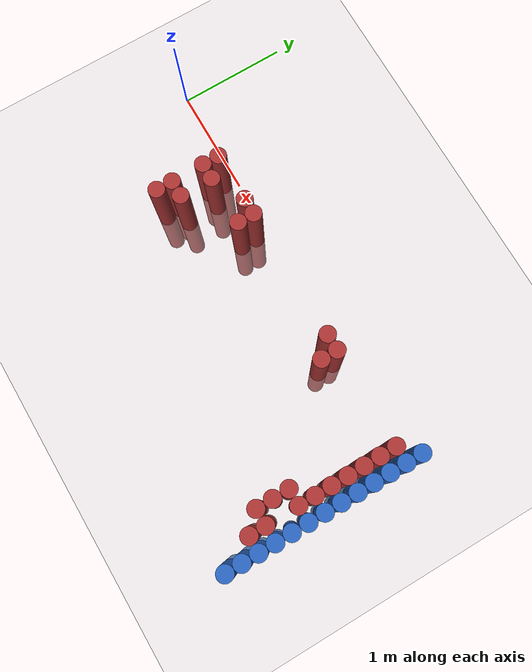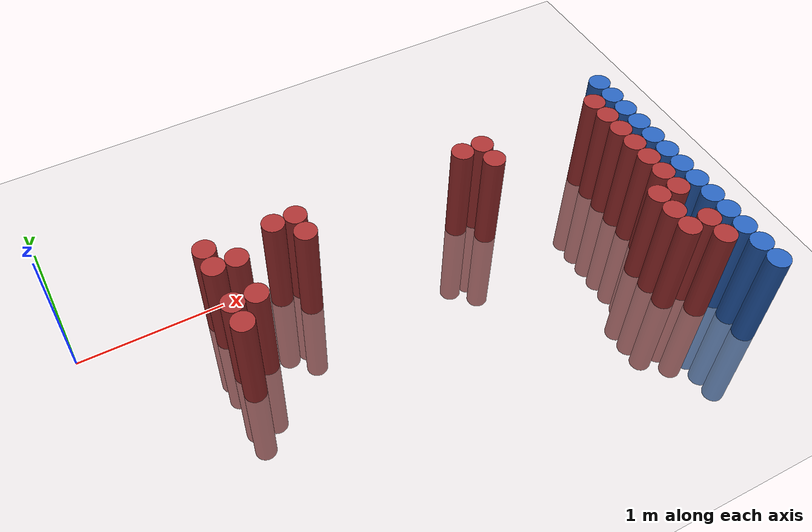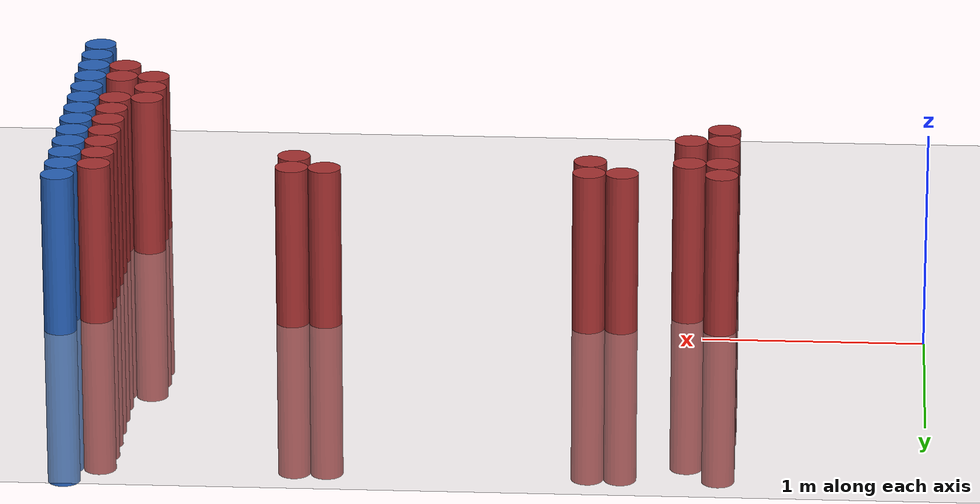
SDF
<sdf version="1.6">
 <world name="default">
  <model name="ground_plane">
   <static>1</static>
   <link name="link">
    <collision name="collision">
     <geometry><plane><normal>0 0 1</normal><size>100 100</size></plane></geometry>
     <surface><friction><ode><mu>100</mu><mu2>50</mu2></ode></friction></surface>
    </collision>
    <visual name="visual">
     <cast_shadows>0</cast_shadows>
     <geometry><plane><normal>0 0 1</normal><size>100 100</size></plane></geometry>
     <material>
      <script><uri>file://media/materials/scripts/gazebo.material</uri><name>Gazebo/Grey</name></script>
     </material>
    </visual>
   </link>
  </model>
  <model name="unit_cylinder_90">
   <static>1</static>
   <pose>3.925000 -1.775000 0.000000 0.000000 0.000000 0.000000</pose>
   <link name="link">
    <inertial>
     <mass>1</mass>
     <inertia><ixx>0.145833</ixx><ixy>0</ixy><ixz>0</ixz><iyy>0.145833</iyy><iyz>0</iyz><izz>0.125</izz></inertia>
    </inertial>
    <collision name="collision">
     <geometry><cylinder><radius>0.075000</radius><length>1.5</length></cylinder></geometry>
    </collision>
    <visual name="visual">
     <geometry><cylinder><radius>0.075000</radius><length>1.5</length></cylinder></geometry>
     <material>
      <ambient>0.152000 0.379000 0.720000 1</ambient>
      <diffuse>0.152000 0.379000 0.720000 1</diffuse>
     </material>
     <material>
      <script><name>Gazebo/Grey</name><uri>file://media/materials/scripts/gazebo.material</uri></script>
     </material>
    </visual>
   </link>
  </model>
  <model name="unit_cylinder_92">
   <static>1</static>
   <pose>3.925000 -1.625000 0.000000 0.000000 0.000000 0.000000</pose>
   <link name="link">
    <inertial>
     <mass>1</mass>
     <inertia><ixx>0.145833</ixx><ixy>0</ixy><ixz>0</ixz><iyy>0.145833</iyy><iyz>0</iyz><izz>0.125</izz></inertia>
    </inertial>
    <collision name="collision">
     <geometry><cylinder><radius>0.075000</radius><length>1.5</length></cylinder></geometry>
    </collision>
    <visual name="visual">
     <geometry><cylinder><radius>0.075000</radius><length>1.5</length></cylinder></geometry>
     <material>
      <ambient>0.152000 0.379000 0.720000 1</ambient>
      <diffuse>0.152000 0.379000 0.720000 1</diffuse>
     </material>
     <material>
      <script><name>Gazebo/Grey</name><uri>file://media/materials/scripts/gazebo.material</uri></script>
     </material>
    </visual>
   </link>
  </model>
  <model name="unit_cylinder_94">
   <static>1</static>
   <pose>3.925000 -1.475000 0.000000 0.000000 0.000000 0.000000</pose>
   <link name="link">
    <inertial>
     <mass>1</mass>
     <inertia><ixx>0.145833</ixx><ixy>0</ixy><ixz>0</ixz><iyy>0.145833</iyy><iyz>0</iyz><izz>0.125</izz></inertia>
    </inertial>
    <collision name="collision">
     <geometry><cylinder><radius>0.075000</radius><length>1.5</length></cylinder></geometry>
    </collision>
    <visual name="visual">
     <geometry><cylinder><radius>0.075000</radius><length>1.5</length></cylinder></geometry>
     <material>
      <ambient>0.152000 0.379000 0.720000 1</ambient>
      <diffuse>0.152000 0.379000 0.720000 1</diffuse>
     </material>
     <material>
      <script><name>Gazebo/Grey</name><uri>file://media/materials/scripts/gazebo.material</uri></script>
     </material>
    </visual>
   </link>
  </model>
  <model name="unit_cylinder_96">
   <static>1</static>
   <pose>3.925000 -1.325000 0.000000 0.000000 0.000000 0.000000</pose>
   <link name="link">
    <inertial>
     <mass>1</mass>
     <inertia><ixx>0.145833</ixx><ixy>0</ixy><ixz>0</ixz><iyy>0.145833</iyy><iyz>0</iyz><izz>0.125</izz></inertia>
    </inertial>
    <collision name="collision">
     <geometry><cylinder><radius>0.075000</radius><length>1.5</length></cylinder></geometry>
    </collision>
    <visual name="visual">
     <geometry><cylinder><radius>0.075000</radius><length>1.5</length></cylinder></geometry>
     <material>
      <ambient>0.152000 0.379000 0.720000 1</ambient>
      <diffuse>0.152000 0.379000 0.720000 1</diffuse>
     </material>
     <material>
      <script><name>Gazebo/Grey</name><uri>file://media/materials/scripts/gazebo.material</uri></script>
     </material>
    </visual>
   </link>
  </model>
  <model name="unit_cylinder_98">
   <static>1</static>
   <pose>3.925000 -1.175000 0.000000 0.000000 0.000000 0.000000</pose>
   <link name="link">
    <inertial>
     <mass>1</mass>
     <inertia><ixx>0.145833</ixx><ixy>0</ixy><ixz>0</ixz><iyy>0.145833</iyy><iyz>0</iyz><izz>0.125</izz></inertia>
    </inertial>
    <collision name="collision">
     <geometry><cylinder><radius>0.075000</radius><length>1.5</length></cylinder></geometry>
    </collision>
    <visual name="visual">
     <geometry><cylinder><radius>0.075000</radius><length>1.5</length></cylinder></geometry>
     <material>
      <ambient>0.152000 0.379000 0.720000 1</ambient>
      <diffuse>0.152000 0.379000 0.720000 1</diffuse>
     </material>
     <material>
      <script><name>Gazebo/Grey</name><uri>file://media/materials/scripts/gazebo.material</uri></script>
     </material>
    </visual>
   </link>
  </model>
  <model name="unit_cylinder_100">
   <static>1</static>
   <pose>3.925000 -1.025000 0.000000 0.000000 0.000000 0.000000</pose>
   <link name="link">
    <inertial>
     <mass>1</mass>
     <inertia><ixx>0.145833</ixx><ixy>0</ixy><ixz>0</ixz><iyy>0.145833</iyy><iyz>0</iyz><izz>0.125</izz></inertia>
    </inertial>
    <collision name="collision">
     <geometry><cylinder><radius>0.075000</radius><length>1.5</length></cylinder></geometry>
    </collision>
    <visual name="visual">
     <geometry><cylinder><radius>0.075000</radius><length>1.5</length></cylinder></geometry>
     <material>
      <ambient>0.152000 0.379000 0.720000 1</ambient>
      <diffuse>0.152000 0.379000 0.720000 1</diffuse>
     </material>
     <material>
      <script><name>Gazebo/Grey</name><uri>file://media/materials/scripts/gazebo.material</uri></script>
     </material>
    </visual>
   </link>
  </model>
  <model name="unit_cylinder_102">
   <static>1</static>
   <pose>3.925000 -0.875000 0.000000 0.000000 0.000000 0.000000</pose>
   <link name="link">
    <inertial>
     <mass>1</mass>
     <inertia><ixx>0.145833</ixx><ixy>0</ixy><ixz>0</ixz><iyy>0.145833</iyy><iyz>0</iyz><izz>0.125</izz></inertia>
    </inertial>
    <collision name="collision">
     <geometry><cylinder><radius>0.075000</radius><length>1.5</length></cylinder></geometry>
    </collision>
    <visual name="visual">
     <geometry><cylinder><radius>0.075000</radius><length>1.5</length></cylinder></geometry>
     <material>
      <ambient>0.152000 0.379000 0.720000 1</ambient>
      <diffuse>0.152000 0.379000 0.720000 1</diffuse>
     </material>
     <material>
      <script><name>Gazebo/Grey</name><uri>file://media/materials/scripts/gazebo.material</uri></script>
     </material>
    </visual>
   </link>
  </model>
  <model name="unit_cylinder_104">
   <static>1</static>
   <pose>3.925000 -0.725000 0.000000 0.000000 0.000000 0.000000</pose>
   <link name="link">
    <inertial>
     <mass>1</mass>
     <inertia><ixx>0.145833</ixx><ixy>0</ixy><ixz>0</ixz><iyy>0.145833</iyy><iyz>0</iyz><izz>0.125</izz></inertia>
    </inertial>
    <collision name="collision">
     <geometry><cylinder><radius>0.075000</radius><length>1.5</length></cylinder></geometry>
    </collision>
    <visual name="visual">
     <geometry><cylinder><radius>0.075000</radius><length>1.5</length></cylinder></geometry>
     <material>
      <ambient>0.152000 0.379000 0.720000 1</ambient>
      <diffuse>0.152000 0.379000 0.720000 1</diffuse>
     </material>
     <material>
      <script><name>Gazebo/Grey</name><uri>file://media/materials/scripts/gazebo.material</uri></script>
     </material>
    </visual>
   </link>
  </model>
  <model name="unit_cylinder_106">
   <static>1</static>
   <pose>3.925000 -0.575000 0.000000 0.000000 0.000000 0.000000</pose>
   <link name="link">
    <inertial>
     <mass>1</mass>
     <inertia><ixx>0.145833</ixx><ixy>0</ixy><ixz>0</ixz><iyy>0.145833</iyy><iyz>0</iyz><izz>0.125</izz></inertia>
    </inertial>
    <collision name="collision">
     <geometry><cylinder><radius>0.075000</radius><length>1.5</length></cylinder></geometry>
    </collision>
    <visual name="visual">
     <geometry><cylinder><radius>0.075000</radius><length>1.5</length></cylinder></geometry>
     <material>
      <ambient>0.152000 0.379000 0.720000 1</ambient>
      <diffuse>0.152000 0.379000 0.720000 1</diffuse>
     </material>
     <material>
      <script><name>Gazebo/Grey</name><uri>file://media/materials/scripts/gazebo.material</uri></script>
     </material>
    </visual>
   </link>
  </model>
  <model name="unit_cylinder_108">
   <static>1</static>
   <pose>3.925000 -0.425000 0.000000 0.000000 0.000000 0.000000</pose>
   <link name="link">
    <inertial>
     <mass>1</mass>
     <inertia><ixx>0.145833</ixx><ixy>0</ixy><ixz>0</ixz><iyy>0.145833</iyy><iyz>0</iyz><izz>0.125</izz></inertia>
    </inertial>
    <collision name="collision">
     <geometry><cylinder><radius>0.075000</radius><length>1.5</length></cylinder></geometry>
    </collision>
    <visual name="visual">
     <geometry><cylinder><radius>0.075000</radius><length>1.5</length></cylinder></geometry>
     <material>
      <ambient>0.152000 0.379000 0.720000 1</ambient>
      <diffuse>0.152000 0.379000 0.720000 1</diffuse>
     </material>
     <material>
      <script><name>Gazebo/Grey</name><uri>file://media/materials/scripts/gazebo.material</uri></script>
     </material>
    </visual>
   </link>
  </model>
  <model name="unit_cylinder_110">
   <static>1</static>
   <pose>3.925000 -0.275000 0.000000 0.000000 0.000000 0.000000</pose>
   <link name="link">
    <inertial>
     <mass>1</mass>
     <inertia><ixx>0.145833</ixx><ixy>0</ixy><ixz>0</ixz><iyy>0.145833</iyy><iyz>0</iyz><izz>0.125</izz></inertia>
    </inertial>
    <collision name="collision">
     <geometry><cylinder><radius>0.075000</radius><length>1.5</length></cylinder></geometry>
    </collision>
    <visual name="visual">
     <geometry><cylinder><radius>0.075000</radius><length>1.5</length></cylinder></geometry>
     <material>
      <ambient>0.152000 0.379000 0.720000 1</ambient>
      <diffuse>0.152000 0.379000 0.720000 1</diffuse>
     </material>
     <material>
      <script><name>Gazebo/Grey</name><uri>file://media/materials/scripts/gazebo.material</uri></script>
     </material>
    </visual>
   </link>
  </model>
  <model name="unit_cylinder_112">
   <static>1</static>
   <pose>3.925000 -0.125000 0.000000 0.000000 0.000000 0.000000</pose>
   <link name="link">
    <inertial>
     <mass>1</mass>
     <inertia><ixx>0.145833</ixx><ixy>0</ixy><ixz>0</ixz><iyy>0.145833</iyy><iyz>0</iyz><izz>0.125</izz></inertia>
    </inertial>
    <collision name="collision">
     <geometry><cylinder><radius>0.075000</radius><length>1.5</length></cylinder></geometry>
    </collision>
    <visual name="visual">
     <geometry><cylinder><radius>0.075000</radius><length>1.5</length></cylinder></geometry>
     <material>
      <ambient>0.152000 0.379000 0.720000 1</ambient>
      <diffuse>0.152000 0.379000 0.720000 1</diffuse>
     </material>
     <material>
      <script><name>Gazebo/Grey</name><uri>file://media/materials/scripts/gazebo.material</uri></script>
     </material>
    </visual>
   </link>
  </model>
  <model name="unit_cylinder_114">
   <static>1</static>
   <pose>3.925000 0.025000 0.000000 0.000000 0.000000 0.000000</pose>
   <link name="link">
    <inertial>
     <mass>1</mass>
     <inertia><ixx>0.145833</ixx><ixy>0</ixy><ixz>0</ixz><iyy>0.145833</iyy><iyz>0</iyz><izz>0.125</izz></inertia>
    </inertial>
    <collision name="collision">
     <geometry><cylinder><radius>0.075000</radius><length>1.5</length></cylinder></geometry>
    </collision>
    <visual name="visual">
     <geometry><cylinder><radius>0.075000</radius><length>1.5</length></cylinder></geometry>
     <material>
      <ambient>0.152000 0.379000 0.720000 1</ambient>
      <diffuse>0.152000 0.379000 0.720000 1</diffuse>
     </material>
     <material>
      <script><name>Gazebo/Grey</name><uri>file://media/materials/scripts/gazebo.material</uri></script>
     </material>
    </visual>
   </link>
  </model>
  <model name="unit_cylinder_333">
   <static>1</static>
   <pose>0.925000 -0.725000 0.000000 0.000000 0.000000 0.000000</pose>
   <link name="link">
    <inertial>
     <mass>1</mass>
     <inertia><ixx>0.145833</ixx><ixy>0</ixy><ixz>0</ixz><iyy>0.145833</iyy><iyz>0</iyz><izz>0.125</izz></inertia>
    </inertial>
    <collision name="collision">
     <geometry><cylinder><radius>0.075000</radius><length>1.5</length></cylinder></geometry>
    </collision>
    <visual name="visual">
     <geometry><cylinder><radius>0.075000</radius><length>1.5</length></cylinder></geometry>
     <material>
      <ambient>0.648000 0.192000 0.192000 1</ambient>
      <diffuse>0.648000 0.192000 0.192000 1</diffuse>
     </material>
     <material>
      <script><name>Gazebo/Grey</name><uri>file://media/materials/scripts/gazebo.material</uri></script>
     </material>
    </visual>
   </link>
  </model>
  <model name="unit_cylinder_334">
   <static>1</static>
   <pose>0.925000 -0.575000 0.000000 0.000000 0.000000 0.000000</pose>
   <link name="link">
    <inertial>
     <mass>1</mass>
     <inertia><ixx>0.145833</ixx><ixy>0</ixy><ixz>0</ixz><iyy>0.145833</iyy><iyz>0</iyz><izz>0.125</izz></inertia>
    </inertial>
    <collision name="collision">
     <geometry><cylinder><radius>0.075000</radius><length>1.5</length></cylinder></geometry>
    </collision>
    <visual name="visual">
     <geometry><cylinder><radius>0.075000</radius><length>1.5</length></cylinder></geometry>
     <material>
      <ambient>0.648000 0.192000 0.192000 1</ambient>
      <diffuse>0.648000 0.192000 0.192000 1</diffuse>
     </material>
     <material>
      <script><name>Gazebo/Grey</name><uri>file://media/materials/scripts/gazebo.material</uri></script>
     </material>
    </visual>
   </link>
  </model>
  <model name="unit_cylinder_335">
   <static>1</static>
   <pose>0.925000 -0.275000 0.000000 0.000000 0.000000 0.000000</pose>
   <link name="link">
    <inertial>
     <mass>1</mass>
     <inertia><ixx>0.145833</ixx><ixy>0</ixy><ixz>0</ixz><iyy>0.145833</iyy><iyz>0</iyz><izz>0.125</izz></inertia>
    </inertial>
    <collision name="collision">
     <geometry><cylinder><radius>0.075000</radius><length>1.5</length></cylinder></geometry>
    </collision>
    <visual name="visual">
     <geometry><cylinder><radius>0.075000</radius><length>1.5</length></cylinder></geometry>
     <material>
      <ambient>0.648000 0.192000 0.192000 1</ambient>
      <diffuse>0.648000 0.192000 0.192000 1</diffuse>
     </material>
     <material>
      <script><name>Gazebo/Grey</name><uri>file://media/materials/scripts/gazebo.material</uri></script>
     </material>
    </visual>
   </link>
  </model>
  <model name="unit_cylinder_336">
   <static>1</static>
   <pose>0.925000 -0.125000 0.000000 0.000000 0.000000 0.000000</pose>
   <link name="link">
    <inertial>
     <mass>1</mass>
     <inertia><ixx>0.145833</ixx><ixy>0</ixy><ixz>0</ixz><iyy>0.145833</iyy><iyz>0</iyz><izz>0.125</izz></inertia>
    </inertial>
    <collision name="collision">
     <geometry><cylinder><radius>0.075000</radius><length>1.5</length></cylinder></geometry>
    </collision>
    <visual name="visual">
     <geometry><cylinder><radius>0.075000</radius><length>1.5</length></cylinder></geometry>
     <material>
      <ambient>0.648000 0.192000 0.192000 1</ambient>
      <diffuse>0.648000 0.192000 0.192000 1</diffuse>
     </material>
     <material>
      <script><name>Gazebo/Grey</name><uri>file://media/materials/scripts/gazebo.material</uri></script>
     </material>
    </visual>
   </link>
  </model>
  <model name="unit_cylinder_338">
   <static>1</static>
   <pose>1.075000 -0.575000 0.000000 0.000000 0.000000 0.000000</pose>
   <link name="link">
    <inertial>
     <mass>1</mass>
     <inertia><ixx>0.145833</ixx><ixy>0</ixy><ixz>0</ixz><iyy>0.145833</iyy><iyz>0</iyz><izz>0.125</izz></inertia>
    </inertial>
    <collision name="collision">
     <geometry><cylinder><radius>0.075000</radius><length>1.5</length></cylinder></geometry>
    </collision>
    <visual name="visual">
     <geometry><cylinder><radius>0.075000</radius><length>1.5</length></cylinder></geometry>
     <material>
      <ambient>0.648000 0.192000 0.192000 1</ambient>
      <diffuse>0.648000 0.192000 0.192000 1</diffuse>
     </material>
     <material>
      <script><name>Gazebo/Grey</name><uri>file://media/materials/scripts/gazebo.material</uri></script>
     </material>
    </visual>
   </link>
  </model>
  <model name="unit_cylinder_339">
   <static>1</static>
   <pose>1.075000 -0.275000 0.000000 0.000000 0.000000 0.000000</pose>
   <link name="link">
    <inertial>
     <mass>1</mass>
     <inertia><ixx>0.145833</ixx><ixy>0</ixy><ixz>0</ixz><iyy>0.145833</iyy><iyz>0</iyz><izz>0.125</izz></inertia>
    </inertial>
    <collision name="collision">
     <geometry><cylinder><radius>0.075000</radius><length>1.5</length></cylinder></geometry>
    </collision>
    <visual name="visual">
     <geometry><cylinder><radius>0.075000</radius><length>1.5</length></cylinder></geometry>
     <material>
      <ambient>0.648000 0.192000 0.192000 1</ambient>
      <diffuse>0.648000 0.192000 0.192000 1</diffuse>
     </material>
     <material>
      <script><name>Gazebo/Grey</name><uri>file://media/materials/scripts/gazebo.material</uri></script>
     </material>
    </visual>
   </link>
  </model>
  <model name="unit_cylinder_340">
   <static>1</static>
   <pose>1.375000 -0.125000 0.000000 0.000000 0.000000 0.000000</pose>
   <link name="link">
    <inertial>
     <mass>1</mass>
     <inertia><ixx>0.145833</ixx><ixy>0</ixy><ixz>0</ixz><iyy>0.145833</iyy><iyz>0</iyz><izz>0.125</izz></inertia>
    </inertial>
    <collision name="collision">
     <geometry><cylinder><radius>0.075000</radius><length>1.5</length></cylinder></geometry>
    </collision>
    <visual name="visual">
     <geometry><cylinder><radius>0.075000</radius><length>1.5</length></cylinder></geometry>
     <material>
      <ambient>0.648000 0.192000 0.192000 1</ambient>
      <diffuse>0.648000 0.192000 0.192000 1</diffuse>
     </material>
     <material>
      <script><name>Gazebo/Grey</name><uri>file://media/materials/scripts/gazebo.material</uri></script>
     </material>
    </visual>
   </link>
  </model>
  <model name="unit_cylinder_343">
   <static>1</static>
   <pose>1.525000 -0.275000 0.000000 0.000000 0.000000 0.000000</pose>
   <link name="link">
    <inertial>
     <mass>1</mass>
     <inertia><ixx>0.145833</ixx><ixy>0</ixy><ixz>0</ixz><iyy>0.145833</iyy><iyz>0</iyz><izz>0.125</izz></inertia>
    </inertial>
    <collision name="collision">
     <geometry><cylinder><radius>0.075000</radius><length>1.5</length></cylinder></geometry>
    </collision>
    <visual name="visual">
     <geometry><cylinder><radius>0.075000</radius><length>1.5</length></cylinder></geometry>
     <material>
      <ambient>0.648000 0.192000 0.192000 1</ambient>
      <diffuse>0.648000 0.192000 0.192000 1</diffuse>
     </material>
     <material>
      <script><name>Gazebo/Grey</name><uri>file://media/materials/scripts/gazebo.material</uri></script>
     </material>
    </visual>
   </link>
  </model>
  <model name="unit_cylinder_344">
   <static>1</static>
   <pose>1.525000 -0.125000 0.000000 0.000000 0.000000 0.000000</pose>
   <link name="link">
    <inertial>
     <mass>1</mass>
     <inertia><ixx>0.145833</ixx><ixy>0</ixy><ixz>0</ixz><iyy>0.145833</iyy><iyz>0</iyz><izz>0.125</izz></inertia>
    </inertial>
    <collision name="collision">
     <geometry><cylinder><radius>0.075000</radius><length>1.5</length></cylinder></geometry>
    </collision>
    <visual name="visual">
     <geometry><cylinder><radius>0.075000</radius><length>1.5</length></cylinder></geometry>
     <material>
      <ambient>0.648000 0.192000 0.192000 1</ambient>
      <diffuse>0.648000 0.192000 0.192000 1</diffuse>
     </material>
     <material>
      <script><name>Gazebo/Grey</name><uri>file://media/materials/scripts/gazebo.material</uri></script>
     </material>
    </visual>
   </link>
  </model>
  <model name="unit_cylinder_345">
   <static>1</static>
   <pose>2.725000 -0.125000 0.000000 0.000000 0.000000 0.000000</pose>
   <link name="link">
    <inertial>
     <mass>1</mass>
     <inertia><ixx>0.145833</ixx><ixy>0</ixy><ixz>0</ixz><iyy>0.145833</iyy><iyz>0</iyz><izz>0.125</izz></inertia>
    </inertial>
    <collision name="collision">
     <geometry><cylinder><radius>0.075000</radius><length>1.5</length></cylinder></geometry>
    </collision>
    <visual name="visual">
     <geometry><cylinder><radius>0.075000</radius><length>1.5</length></cylinder></geometry>
     <material>
      <ambient>0.648000 0.192000 0.192000 1</ambient>
      <diffuse>0.648000 0.192000 0.192000 1</diffuse>
     </material>
     <material>
      <script><name>Gazebo/Grey</name><uri>file://media/materials/scripts/gazebo.material</uri></script>
     </material>
    </visual>
   </link>
  </model>
  <model name="unit_cylinder_346">
   <static>1</static>
   <pose>2.875000 -0.275000 0.000000 0.000000 0.000000 0.000000</pose>
   <link name="link">
    <inertial>
     <mass>1</mass>
     <inertia><ixx>0.145833</ixx><ixy>0</ixy><ixz>0</ixz><iyy>0.145833</iyy><iyz>0</iyz><izz>0.125</izz></inertia>
    </inertial>
    <collision name="collision">
     <geometry><cylinder><radius>0.075000</radius><length>1.5</length></cylinder></geometry>
    </collision>
    <visual name="visual">
     <geometry><cylinder><radius>0.075000</radius><length>1.5</length></cylinder></geometry>
     <material>
      <ambient>0.648000 0.192000 0.192000 1</ambient>
      <diffuse>0.648000 0.192000 0.192000 1</diffuse>
     </material>
     <material>
      <script><name>Gazebo/Grey</name><uri>file://media/materials/scripts/gazebo.material</uri></script>
     </material>
    </visual>
   </link>
  </model>
  <model name="unit_cylinder_347">
   <static>1</static>
   <pose>2.875000 -0.125000 0.000000 0.000000 0.000000 0.000000</pose>
   <link name="link">
    <inertial>
     <mass>1</mass>
     <inertia><ixx>0.145833</ixx><ixy>0</ixy><ixz>0</ixz><iyy>0.145833</iyy><iyz>0</iyz><izz>0.125</izz></inertia>
    </inertial>
    <collision name="collision">
     <geometry><cylinder><radius>0.075000</radius><length>1.5</length></cylinder></geometry>
    </collision>
    <visual name="visual">
     <geometry><cylinder><radius>0.075000</radius><length>1.5</length></cylinder></geometry>
     <material>
      <ambient>0.648000 0.192000 0.192000 1</ambient>
      <diffuse>0.648000 0.192000 0.192000 1</diffuse>
     </material>
     <material>
      <script><name>Gazebo/Grey</name><uri>file://media/materials/scripts/gazebo.material</uri></script>
     </material>
    </visual>
   </link>
  </model>
  <model name="unit_cylinder_355">
   <static>1</static>
   <pose>3.625000 -1.325000 0.000000 0.000000 0.000000 0.000000</pose>
   <link name="link">
    <inertial>
     <mass>1</mass>
     <inertia><ixx>0.145833</ixx><ixy>0</ixy><ixz>0</ixz><iyy>0.145833</iyy><iyz>0</iyz><izz>0.125</izz></inertia>
    </inertial>
    <collision name="collision">
     <geometry><cylinder><radius>0.075000</radius><length>1.5</length></cylinder></geometry>
    </collision>
    <visual name="visual">
     <geometry><cylinder><radius>0.075000</radius><length>1.5</length></cylinder></geometry>
     <material>
      <ambient>0.648000 0.192000 0.192000 1</ambient>
      <diffuse>0.648000 0.192000 0.192000 1</diffuse>
     </material>
     <material>
      <script><name>Gazebo/Grey</name><uri>file://media/materials/scripts/gazebo.material</uri></script>
     </material>
    </visual>
   </link>
  </model>
  <model name="unit_cylinder_356">
   <static>1</static>
   <pose>3.625000 -1.175000 0.000000 0.000000 0.000000 0.000000</pose>
   <link name="link">
    <inertial>
     <mass>1</mass>
     <inertia><ixx>0.145833</ixx><ixy>0</ixy><ixz>0</ixz><iyy>0.145833</iyy><iyz>0</iyz><izz>0.125</izz></inertia>
    </inertial>
    <collision name="collision">
     <geometry><cylinder><radius>0.075000</radius><length>1.5</length></cylinder></geometry>
    </collision>
    <visual name="visual">
     <geometry><cylinder><radius>0.075000</radius><length>1.5</length></cylinder></geometry>
     <material>
      <ambient>0.648000 0.192000 0.192000 1</ambient>
      <diffuse>0.648000 0.192000 0.192000 1</diffuse>
     </material>
     <material>
      <script><name>Gazebo/Grey</name><uri>file://media/materials/scripts/gazebo.material</uri></script>
     </material>
    </visual>
   </link>
  </model>
  <model name="unit_cylinder_357">
   <static>1</static>
   <pose>3.625000 -1.025000 0.000000 0.000000 0.000000 0.000000</pose>
   <link name="link">
    <inertial>
     <mass>1</mass>
     <inertia><ixx>0.145833</ixx><ixy>0</ixy><ixz>0</ixz><iyy>0.145833</iyy><iyz>0</iyz><izz>0.125</izz></inertia>
    </inertial>
    <collision name="collision">
     <geometry><cylinder><radius>0.075000</radius><length>1.5</length></cylinder></geometry>
    </collision>
    <visual name="visual">
     <geometry><cylinder><radius>0.075000</radius><length>1.5</length></cylinder></geometry>
     <material>
      <ambient>0.648000 0.192000 0.192000 1</ambient>
      <diffuse>0.648000 0.192000 0.192000 1</diffuse>
     </material>
     <material>
      <script><name>Gazebo/Grey</name><uri>file://media/materials/scripts/gazebo.material</uri></script>
     </material>
    </visual>
   </link>
  </model>
  <model name="unit_cylinder_363">
   <static>1</static>
   <pose>3.775000 -1.475000 0.000000 0.000000 0.000000 0.000000</pose>
   <link name="link">
    <inertial>
     <mass>1</mass>
     <inertia><ixx>0.145833</ixx><ixy>0</ixy><ixz>0</ixz><iyy>0.145833</iyy><iyz>0</iyz><izz>0.125</izz></inertia>
    </inertial>
    <collision name="collision">
     <geometry><cylinder><radius>0.075000</radius><length>1.5</length></cylinder></geometry>
    </collision>
    <visual name="visual">
     <geometry><cylinder><radius>0.075000</radius><length>1.5</length></cylinder></geometry>
     <material>
      <ambient>0.648000 0.192000 0.192000 1</ambient>
      <diffuse>0.648000 0.192000 0.192000 1</diffuse>
     </material>
     <material>
      <script><name>Gazebo/Grey</name><uri>file://media/materials/scripts/gazebo.material</uri></script>
     </material>
    </visual>
   </link>
  </model>
  <model name="unit_cylinder_364">
   <static>1</static>
   <pose>3.775000 -1.325000 0.000000 0.000000 0.000000 0.000000</pose>
   <link name="link">
    <inertial>
     <mass>1</mass>
     <inertia><ixx>0.145833</ixx><ixy>0</ixy><ixz>0</ixz><iyy>0.145833</iyy><iyz>0</iyz><izz>0.125</izz></inertia>
    </inertial>
    <collision name="collision">
     <geometry><cylinder><radius>0.075000</radius><length>1.5</length></cylinder></geometry>
    </collision>
    <visual name="visual">
     <geometry><cylinder><radius>0.075000</radius><length>1.5</length></cylinder></geometry>
     <material>
      <ambient>0.648000 0.192000 0.192000 1</ambient>
      <diffuse>0.648000 0.192000 0.192000 1</diffuse>
     </material>
     <material>
      <script><name>Gazebo/Grey</name><uri>file://media/materials/scripts/gazebo.material</uri></script>
     </material>
    </visual>
   </link>
  </model>
  <model name="unit_cylinder_365">
   <static>1</static>
   <pose>3.775000 -1.025000 0.000000 0.000000 0.000000 0.000000</pose>
   <link name="link">
    <inertial>
     <mass>1</mass>
     <inertia><ixx>0.145833</ixx><ixy>0</ixy><ixz>0</ixz><iyy>0.145833</iyy><iyz>0</iyz><izz>0.125</izz></inertia>
    </inertial>
    <collision name="collision">
     <geometry><cylinder><radius>0.075000</radius><length>1.5</length></cylinder></geometry>
    </collision>
    <visual name="visual">
     <geometry><cylinder><radius>0.075000</radius><length>1.5</length></cylinder></geometry>
     <material>
      <ambient>0.648000 0.192000 0.192000 1</ambient>
      <diffuse>0.648000 0.192000 0.192000 1</diffuse>
     </material>
     <material>
      <script><name>Gazebo/Grey</name><uri>file://media/materials/scripts/gazebo.material</uri></script>
     </material>
    </visual>
   </link>
  </model>
  <model name="unit_cylinder_366">
   <static>1</static>
   <pose>3.775000 -0.875000 0.000000 0.000000 0.000000 0.000000</pose>
   <link name="link">
    <inertial>
     <mass>1</mass>
     <inertia><ixx>0.145833</ixx><ixy>0</ixy><ixz>0</ixz><iyy>0.145833</iyy><iyz>0</iyz><izz>0.125</izz></inertia>
    </inertial>
    <collision name="collision">
     <geometry><cylinder><radius>0.075000</radius><length>1.5</length></cylinder></geometry>
    </collision>
    <visual name="visual">
     <geometry><cylinder><radius>0.075000</radius><length>1.5</length></cylinder></geometry>
     <material>
      <ambient>0.648000 0.192000 0.192000 1</ambient>
      <diffuse>0.648000 0.192000 0.192000 1</diffuse>
     </material>
     <material>
      <script><name>Gazebo/Grey</name><uri>file://media/materials/scripts/gazebo.material</uri></script>
     </material>
    </visual>
   </link>
  </model>
  <model name="unit_cylinder_367">
   <static>1</static>
   <pose>3.775000 -0.725000 0.000000 0.000000 0.000000 0.000000</pose>
   <link name="link">
    <inertial>
     <mass>1</mass>
     <inertia><ixx>0.145833</ixx><ixy>0</ixy><ixz>0</ixz><iyy>0.145833</iyy><iyz>0</iyz><izz>0.125</izz></inertia>
    </inertial>
    <collision name="collision">
     <geometry><cylinder><radius>0.075000</radius><length>1.5</length></cylinder></geometry>
    </collision>
    <visual name="visual">
     <geometry><cylinder><radius>0.075000</radius><length>1.5</length></cylinder></geometry>
     <material>
      <ambient>0.648000 0.192000 0.192000 1</ambient>
      <diffuse>0.648000 0.192000 0.192000 1</diffuse>
     </material>
     <material>
      <script><name>Gazebo/Grey</name><uri>file://media/materials/scripts/gazebo.material</uri></script>
     </material>
    </visual>
   </link>
  </model>
  <model name="unit_cylinder_368">
   <static>1</static>
   <pose>3.775000 -0.575000 0.000000 0.000000 0.000000 0.000000</pose>
   <link name="link">
    <inertial>
     <mass>1</mass>
     <inertia><ixx>0.145833</ixx><ixy>0</ixy><ixz>0</ixz><iyy>0.145833</iyy><iyz>0</iyz><izz>0.125</izz></inertia>
    </inertial>
    <collision name="collision">
     <geometry><cylinder><radius>0.075000</radius><length>1.5</length></cylinder></geometry>
    </collision>
    <visual name="visual">
     <geometry><cylinder><radius>0.075000</radius><length>1.5</length></cylinder></geometry>
     <material>
      <ambient>0.648000 0.192000 0.192000 1</ambient>
      <diffuse>0.648000 0.192000 0.192000 1</diffuse>
     </material>
     <material>
      <script><name>Gazebo/Grey</name><uri>file://media/materials/scripts/gazebo.material</uri></script>
     </material>
    </visual>
   </link>
  </model>
  <model name="unit_cylinder_369">
   <static>1</static>
   <pose>3.775000 -0.425000 0.000000 0.000000 0.000000 0.000000</pose>
   <link name="link">
    <inertial>
     <mass>1</mass>
     <inertia><ixx>0.145833</ixx><ixy>0</ixy><ixz>0</ixz><iyy>0.145833</iyy><iyz>0</iyz><izz>0.125</izz></inertia>
    </inertial>
    <collision name="collision">
     <geometry><cylinder><radius>0.075000</radius><length>1.5</length></cylinder></geometry>
    </collision>
    <visual name="visual">
     <geometry><cylinder><radius>0.075000</radius><length>1.5</length></cylinder></geometry>
     <material>
      <ambient>0.648000 0.192000 0.192000 1</ambient>
      <diffuse>0.648000 0.192000 0.192000 1</diffuse>
     </material>
     <material>
      <script><name>Gazebo/Grey</name><uri>file://media/materials/scripts/gazebo.material</uri></script>
     </material>
    </visual>
   </link>
  </model>
  <model name="unit_cylinder_370">
   <static>1</static>
   <pose>3.775000 -0.275000 0.000000 0.000000 0.000000 0.000000</pose>
   <link name="link">
    <inertial>
     <mass>1</mass>
     <inertia><ixx>0.145833</ixx><ixy>0</ixy><ixz>0</ixz><iyy>0.145833</iyy><iyz>0</iyz><izz>0.125</izz></inertia>
    </inertial>
    <collision name="collision">
     <geometry><cylinder><radius>0.075000</radius><length>1.5</length></cylinder></geometry>
    </collision>
    <visual name="visual">
     <geometry><cylinder><radius>0.075000</radius><length>1.5</length></cylinder></geometry>
     <material>
      <ambient>0.648000 0.192000 0.192000 1</ambient>
      <diffuse>0.648000 0.192000 0.192000 1</diffuse>
     </material>
     <material>
      <script><name>Gazebo/Grey</name><uri>file://media/materials/scripts/gazebo.material</uri></script>
     </material>
    </visual>
   </link>
  </model>
  <model name="unit_cylinder_371">
   <static>1</static>
   <pose>3.775000 -0.125000 0.000000 0.000000 0.000000 0.000000</pose>
   <link name="link">
    <inertial>
     <mass>1</mass>
     <inertia><ixx>0.145833</ixx><ixy>0</ixy><ixz>0</ixz><iyy>0.145833</iyy><iyz>0</iyz><izz>0.125</izz></inertia>
    </inertial>
    <collision name="collision">
     <geometry><cylinder><radius>0.075000</radius><length>1.5</length></cylinder></geometry>
    </collision>
    <visual name="visual">
     <geometry><cylinder><radius>0.075000</radius><length>1.5</length></cylinder></geometry>
     <material>
      <ambient>0.648000 0.192000 0.192000 1</ambient>
      <diffuse>0.648000 0.192000 0.192000 1</diffuse>
     </material>
     <material>
      <script><name>Gazebo/Grey</name><uri>file://media/materials/scripts/gazebo.material</uri></script>
     </material>
    </visual>
   </link>
  </model>
  <model name="unit_cylinder_390">
   <static>1</static>
   <pose>3.925000 -1.775000 0.000000 0.000000 0.000000 0.000000</pose>
   <link name="link">
    <inertial>
     <mass>1</mass>
     <inertia><ixx>0.145833</ixx><ixy>0</ixy><ixz>0</ixz><iyy>0.145833</iyy><iyz>0</iyz><izz>0.125</izz></inertia>
    </inertial>
    <collision name="collision">
     <geometry><cylinder><radius>0.075000</radius><length>1.5</length></cylinder></geometry>
    </collision>
    <visual name="visual">
     <geometry><cylinder><radius>0.075000</radius><length>1.5</length></cylinder></geometry>
     <material>
      <ambient>0.152000 0.379000 0.720000 1</ambient>
      <diffuse>0.152000 0.379000 0.720000 1</diffuse>
     </material>
     <material>
      <script><name>Gazebo/Grey</name><uri>file://media/materials/scripts/gazebo.material</uri></script>
     </material>
    </visual>
   </link>
  </model>
  <model name="unit_cylinder_391">
   <static>1</static>
   <pose>3.925000 -1.625000 0.000000 0.000000 0.000000 0.000000</pose>
   <link name="link">
    <inertial>
     <mass>1</mass>
     <inertia><ixx>0.145833</ixx><ixy>0</ixy><ixz>0</ixz><iyy>0.145833</iyy><iyz>0</iyz><izz>0.125</izz></inertia>
    </inertial>
    <collision name="collision">
     <geometry><cylinder><radius>0.075000</radius><length>1.5</length></cylinder></geometry>
    </collision>
    <visual name="visual">
     <geometry><cylinder><radius>0.075000</radius><length>1.5</length></cylinder></geometry>
     <material>
      <ambient>0.152000 0.379000 0.720000 1</ambient>
      <diffuse>0.152000 0.379000 0.720000 1</diffuse>
     </material>
     <material>
      <script><name>Gazebo/Grey</name><uri>file://media/materials/scripts/gazebo.material</uri></script>
     </material>
    </visual>
   </link>
  </model>
  <model name="unit_cylinder_392">
   <static>1</static>
   <pose>3.925000 -1.475000 0.000000 0.000000 0.000000 0.000000</pose>
   <link name="link">
    <inertial>
     <mass>1</mass>
     <inertia><ixx>0.145833</ixx><ixy>0</ixy><ixz>0</ixz><iyy>0.145833</iyy><iyz>0</iyz><izz>0.125</izz></inertia>
    </inertial>
    <collision name="collision">
     <geometry><cylinder><radius>0.075000</radius><length>1.5</length></cylinder></geometry>
    </collision>
    <visual name="visual">
     <geometry><cylinder><radius>0.075000</radius><length>1.5</length></cylinder></geometry>
     <material>
      <ambient>0.152000 0.379000 0.720000 1</ambient>
      <diffuse>0.152000 0.379000 0.720000 1</diffuse>
     </material>
     <material>
      <script><name>Gazebo/Grey</name><uri>file://media/materials/scripts/gazebo.material</uri></script>
     </material>
    </visual>
   </link>
  </model>
  <model name="unit_cylinder_393">
   <static>1</static>
   <pose>3.925000 -1.325000 0.000000 0.000000 0.000000 0.000000</pose>
   <link name="link">
    <inertial>
     <mass>1</mass>
     <inertia><ixx>0.145833</ixx><ixy>0</ixy><ixz>0</ixz><iyy>0.145833</iyy><iyz>0</iyz><izz>0.125</izz></inertia>
    </inertial>
    <collision name="collision">
     <geometry><cylinder><radius>0.075000</radius><length>1.5</length></cylinder></geometry>
    </collision>
    <visual name="visual">
     <geometry><cylinder><radius>0.075000</radius><length>1.5</length></cylinder></geometry>
     <material>
      <ambient>0.152000 0.379000 0.720000 1</ambient>
      <diffuse>0.152000 0.379000 0.720000 1</diffuse>
     </material>
     <material>
      <script><name>Gazebo/Grey</name><uri>file://media/materials/scripts/gazebo.material</uri></script>
     </material>
    </visual>
   </link>
  </model>
  <model name="unit_cylinder_394">
   <static>1</static>
   <pose>3.925000 -1.175000 0.000000 0.000000 0.000000 0.000000</pose>
   <link name="link">
    <inertial>
     <mass>1</mass>
     <inertia><ixx>0.145833</ixx><ixy>0</ixy><ixz>0</ixz><iyy>0.145833</iyy><iyz>0</iyz><izz>0.125</izz></inertia>
    </inertial>
    <collision name="collision">
     <geometry><cylinder><radius>0.075000</radius><length>1.5</length></cylinder></geometry>
    </collision>
    <visual name="visual">
     <geometry><cylinder><radius>0.075000</radius><length>1.5</length></cylinder></geometry>
     <material>
      <ambient>0.152000 0.379000 0.720000 1</ambient>
      <diffuse>0.152000 0.379000 0.720000 1</diffuse>
     </material>
     <material>
      <script><name>Gazebo/Grey</name><uri>file://media/materials/scripts/gazebo.material</uri></script>
     </material>
    </visual>
   </link>
  </model>
  <model name="unit_cylinder_395">
   <static>1</static>
   <pose>3.925000 -1.025000 0.000000 0.000000 0.000000 0.000000</pose>
   <link name="link">
    <inertial>
     <mass>1</mass>
     <inertia><ixx>0.145833</ixx><ixy>0</ixy><ixz>0</ixz><iyy>0.145833</iyy><iyz>0</iyz><izz>0.125</izz></inertia>
    </inertial>
    <collision name="collision">
     <geometry><cylinder><radius>0.075000</radius><length>1.5</length></cylinder></geometry>
    </collision>
    <visual name="visual">
     <geometry><cylinder><radius>0.075000</radius><length>1.5</length></cylinder></geometry>
     <material>
      <ambient>0.152000 0.379000 0.720000 1</ambient>
      <diffuse>0.152000 0.379000 0.720000 1</diffuse>
     </material>
     <material>
      <script><name>Gazebo/Grey</name><uri>file://media/materials/scripts/gazebo.material</uri></script>
     </material>
    </visual>
   </link>
  </model>
  <model name="unit_cylinder_396">
   <static>1</static>
   <pose>3.925000 -0.875000 0.000000 0.000000 0.000000 0.000000</pose>
   <link name="link">
    <inertial>
     <mass>1</mass>
     <inertia><ixx>0.145833</ixx><ixy>0</ixy><ixz>0</ixz><iyy>0.145833</iyy><iyz>0</iyz><izz>0.125</izz></inertia>
    </inertial>
    <collision name="collision">
     <geometry><cylinder><radius>0.075000</radius><length>1.5</length></cylinder></geometry>
    </collision>
    <visual name="visual">
     <geometry><cylinder><radius>0.075000</radius><length>1.5</length></cylinder></geometry>
     <material>
      <ambient>0.152000 0.379000 0.720000 1</ambient>
      <diffuse>0.152000 0.379000 0.720000 1</diffuse>
     </material>
     <material>
      <script><name>Gazebo/Grey</name><uri>file://media/materials/scripts/gazebo.material</uri></script>
     </material>
    </visual>
   </link>
  </model>
  <model name="unit_cylinder_397">
   <static>1</static>
   <pose>3.925000 -0.725000 0.000000 0.000000 0.000000 0.000000</pose>
   <link name="link">
    <inertial>
     <mass>1</mass>
     <inertia><ixx>0.145833</ixx><ixy>0</ixy><ixz>0</ixz><iyy>0.145833</iyy><iyz>0</iyz><izz>0.125</izz></inertia>
    </inertial>
    <collision name="collision">
     <geometry><cylinder><radius>0.075000</radius><length>1.5</length></cylinder></geometry>
    </collision>
    <visual name="visual">
     <geometry><cylinder><radius>0.075000</radius><length>1.5</length></cylinder></geometry>
     <material>
      <ambient>0.152000 0.379000 0.720000 1</ambient>
      <diffuse>0.152000 0.379000 0.720000 1</diffuse>
     </material>
     <material>
      <script><name>Gazebo/Grey</name><uri>file://media/materials/scripts/gazebo.material</uri></script>
     </material>
    </visual>
   </link>
  </model>
  <model name="unit_cylinder_398">
   <static>1</static>
   <pose>3.925000 -0.575000 0.000000 0.000000 0.000000 0.000000</pose>
   <link name="link">
    <inertial>
     <mass>1</mass>
     <inertia><ixx>0.145833</ixx><ixy>0</ixy><ixz>0</ixz><iyy>0.145833</iyy><iyz>0</iyz><izz>0.125</izz></inertia>
    </inertial>
    <collision name="collision">
     <geometry><cylinder><radius>0.075000</radius><length>1.5</length></cylinder></geometry>
    </collision>
    <visual name="visual">
     <geometry><cylinder><radius>0.075000</radius><length>1.5</length></cylinder></geometry>
     <material>
      <ambient>0.152000 0.379000 0.720000 1</ambient>
      <diffuse>0.152000 0.379000 0.720000 1</diffuse>
     </material>
     <material>
      <script><name>Gazebo/Grey</name><uri>file://media/materials/scripts/gazebo.material</uri></script>
     </material>
    </visual>
   </link>
  </model>
  <model name="unit_cylinder_399">
   <static>1</static>
   <pose>3.925000 -0.425000 0.000000 0.000000 0.000000 0.000000</pose>
   <link name="link">
    <inertial>
     <mass>1</mass>
     <inertia><ixx>0.145833</ixx><ixy>0</ixy><ixz>0</ixz><iyy>0.145833</iyy><iyz>0</iyz><izz>0.125</izz></inertia>
    </inertial>
    <collision name="collision">
     <geometry><cylinder><radius>0.075000</radius><length>1.5</length></cylinder></geometry>
    </collision>
    <visual name="visual">
     <geometry><cylinder><radius>0.075000</radius><length>1.5</length></cylinder></geometry>
     <material>
      <ambient>0.152000 0.379000 0.720000 1</ambient>
      <diffuse>0.152000 0.379000 0.720000 1</diffuse>
     </material>
     <material>
      <script><name>Gazebo/Grey</name><uri>file://media/materials/scripts/gazebo.material</uri></script>
     </material>
    </visual>
   </link>
  </model>
  <model name="unit_cylinder_400">
   <static>1</static>
   <pose>3.925000 -0.275000 0.000000 0.000000 0.000000 0.000000</pose>
   <link name="link">
    <inertial>
     <mass>1</mass>
     <inertia><ixx>0.145833</ixx><ixy>0</ixy><ixz>0</ixz><iyy>0.145833</iyy><iyz>0</iyz><izz>0.125</izz></inertia>
    </inertial>
    <collision name="collision">
     <geometry><cylinder><radius>0.075000</radius><length>1.5</length></cylinder></geometry>
    </collision>
    <visual name="visual">
     <geometry><cylinder><radius>0.075000</radius><length>1.5</length></cylinder></geometry>
     <material>
      <ambient>0.152000 0.379000 0.720000 1</ambient>
      <diffuse>0.152000 0.379000 0.720000 1</diffuse>
     </material>
     <material>
      <script><name>Gazebo/Grey</name><uri>file://media/materials/scripts/gazebo.material</uri></script>
     </material>
    </visual>
   </link>
  </model>
  <model name="unit_cylinder_401">
   <static>1</static>
   <pose>3.925000 -0.125000 0.000000 0.000000 0.000000 0.000000</pose>
   <link name="link">
    <inertial>
     <mass>1</mass>
     <inertia><ixx>0.145833</ixx><ixy>0</ixy><ixz>0</ixz><iyy>0.145833</iyy><iyz>0</iyz><izz>0.125</izz></inertia>
    </inertial>
    <collision name="collision">
     <geometry><cylinder><radius>0.075000</radius><length>1.5</length></cylinder></geometry>
    </collision>
    <visual name="visual">
     <geometry><cylinder><radius>0.075000</radius><length>1.5</length></cylinder></geometry>
     <material>
      <ambient>0.152000 0.379000 0.720000 1</ambient>
      <diffuse>0.152000 0.379000 0.720000 1</diffuse>
     </material>
     <material>
      <script><name>Gazebo/Grey</name><uri>file://media/materials/scripts/gazebo.material</uri></script>
     </material>
    </visual>
   </link>
  </model>
 </world>
</sdf>
